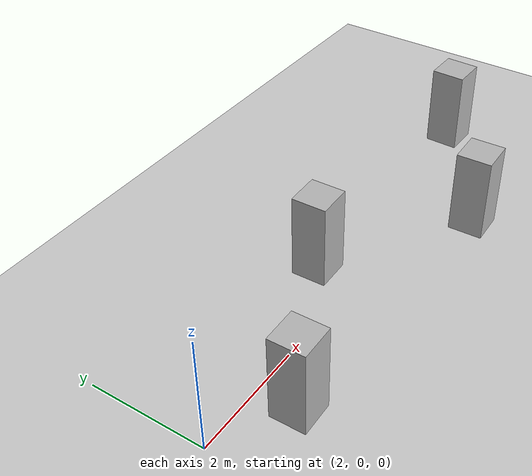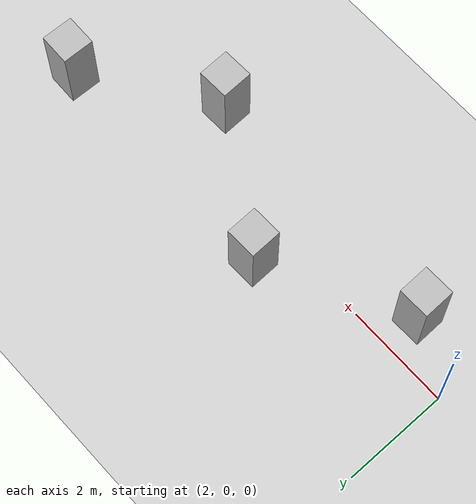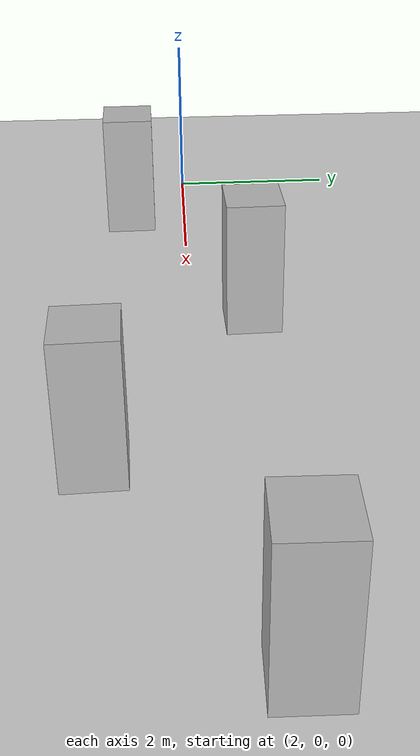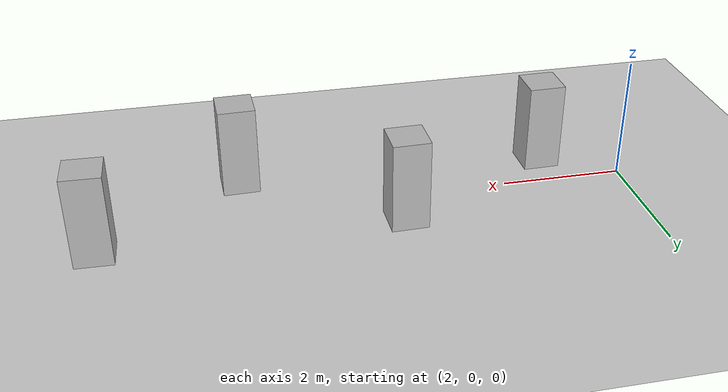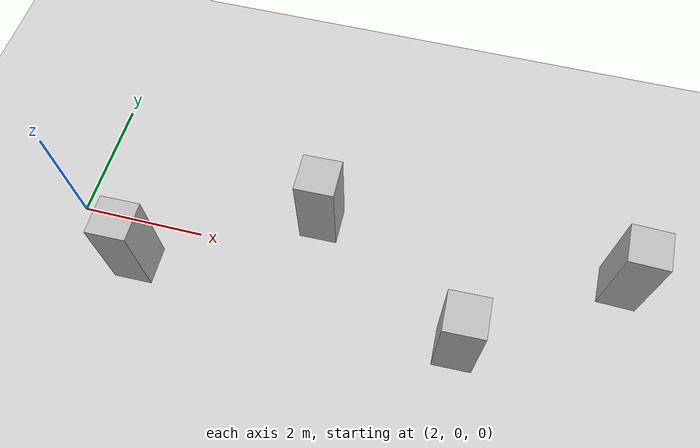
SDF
<?xml version="1.0"?>
<sdf version="1.6">
  <world name="v2-04f-static-s4808">
    <gravity>0 0 -9.81</gravity>
    <physics name="v2_deterministic" type="ode">
      <max_step_size>0.002</max_step_size>
      <real_time_update_rate>500</real_time_update_rate>
    </physics>
    <include>
      <uri>model://sun</uri>
    </include>
    <include>
      <uri>model://ground_plane</uri>
    </include>
    <model name="pillar-1">
      <static>true</static>
      <pose>3.218612585 -0.689128290 0.750000000 0 0 0.017324027</pose>
      <link name="link">
        <collision name="collision">
          <geometry>
            <box>
              <size>0.600000 0.600000 1.500000</size>
            </box>
          </geometry>
        </collision>
        <visual name="visual">
          <geometry>
            <box>
              <size>0.600000 0.600000 1.500000</size>
            </box>
          </geometry>
        </visual>
      </link>
    </model>
    <model name="pillar-2">
      <static>true</static>
      <pose>5.847550477 0.682289779 0.750000000 0 0 0.021726962</pose>
      <link name="link">
        <collision name="collision">
          <geometry>
            <box>
              <size>0.600000 0.600000 1.500000</size>
            </box>
          </geometry>
        </collision>
        <visual name="visual">
          <geometry>
            <box>
              <size>0.600000 0.600000 1.500000</size>
            </box>
          </geometry>
        </visual>
      </link>
    </model>
    <model name="pillar-3">
      <static>true</static>
      <pose>8.313899516 -0.906264054 0.750000000 0 0 0.027599575</pose>
      <link name="link">
        <collision name="collision">
          <geometry>
            <box>
              <size>0.600000 0.600000 1.500000</size>
            </box>
          </geometry>
        </collision>
        <visual name="visual">
          <geometry>
            <box>
              <size>0.600000 0.600000 1.500000</size>
            </box>
          </geometry>
        </visual>
      </link>
    </model>
    <model name="pillar-4">
      <static>true</static>
      <pose>10.610208425 0.666610069 0.750000000 0 0 -0.026982704</pose>
      <link name="link">
        <collision name="collision">
          <geometry>
            <box>
              <size>0.600000 0.600000 1.500000</size>
            </box>
          </geometry>
        </collision>
        <visual name="visual">
          <geometry>
            <box>
              <size>0.600000 0.600000 1.500000</size>
            </box>
          </geometry>
        </visual>
      </link>
    </model>
  </world>
</sdf>
